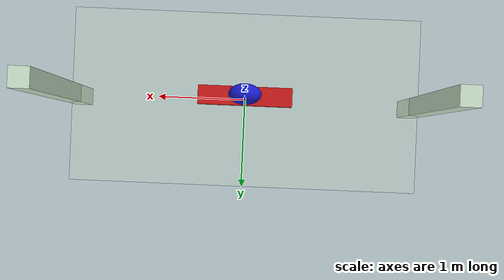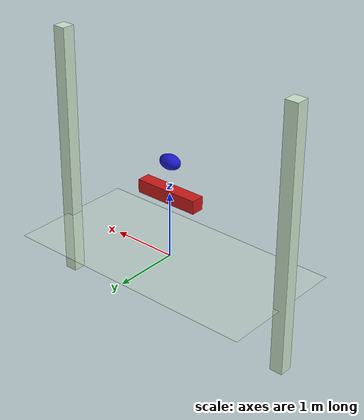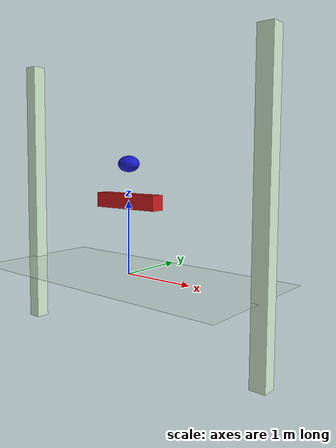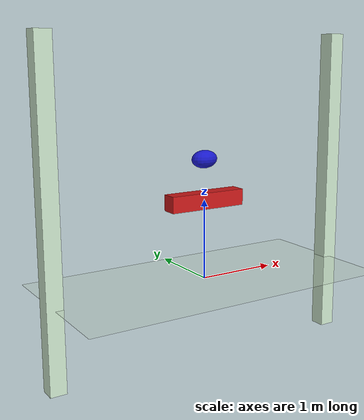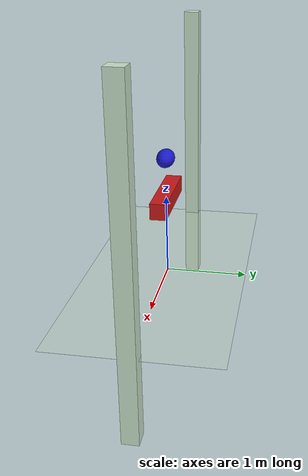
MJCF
<mujoco model="bouncer">
  <compiler inertiafromgeom="true"/>
  <option timestep="0.005" gravity="0 0 -9.81"/>
  <worldbody>
        <light pos="0 3 3" dir="0 -1 -1" diffuse="1.5 1.5 1.5"/>
        <light pos="0 0 4" dir="0 0 -1" diffuse="2 2 2"/>
        <light pos="-2 3 3" dir="1 -1 -1" diffuse="1 1 1"/>
        <light pos="2 3 3" dir="-1 -1 -1" diffuse="1 1 1"/>
        <!-- Left Wall -->
        <body name="left_wall" pos="-2 0 1"> <!-- Adjust the position as needed -->
            <geom name="left_wall_geom" type="box" size="0.1 0.1 2" rgba="0.8 0.9 0.8 1"/>
        </body>

        <!-- Right Wall -->
        <body name="right_wall" pos="2 0 1"> <!-- Adjust the position as needed -->
            <geom name="right_wall_geom" type="box" size="0.1 0.1 2" rgba="0.8 0.9 0.8 1"/>
        </body>

        <!-- Floor -->
        <body name="floor" pos="0 0 0">
            <geom name="floor_geom" type="plane" size="2 1 0.1" rgba="0.8 0.9 0.8 1"/>
        </body>

        <body name="bar" pos="0 0 1">
            <geom name="bar_geom" type="box" size="0.5 0.1 0.1" rgba="0.8 0.1 0.1 1"/>
            <joint name="bar_joint" type="slide" axis="1 0 0" range="-1.25 1.25"/>
        </body>
        <body name="ball" pos="0 0 1.5">
            <geom name="ball_geom" type="ellipsoid" size="0.17 0.11 0.11"
                  density="100" rgba="0.1 0.1 0.8 1" solref="-1000 0"/>
            <joint name="ball_slide_x" type="slide" axis="1 0 0"/>
            <joint name="ball_slide_z" type="slide" axis="0 0 1"/>
            <joint name="ball_hinge_y" type="hinge" axis="0 1 0"/>
        </body>
    </worldbody>
    <actuator>
        <motor joint="bar_joint" ctrlrange="-500 500" ctrllimited="true"/>
    </actuator>
</mujoco>
